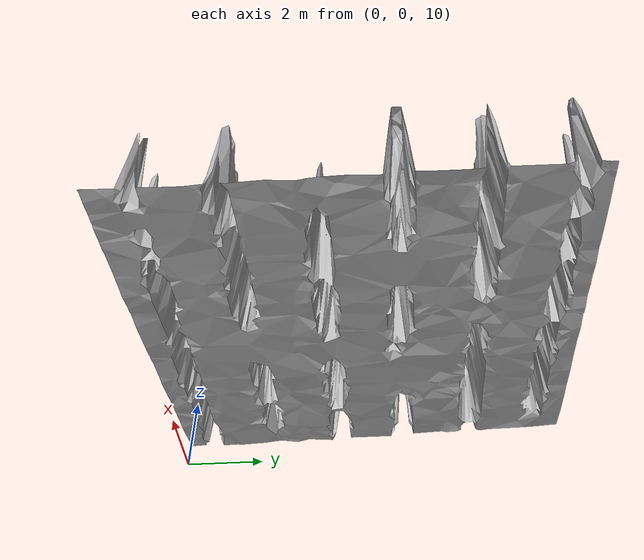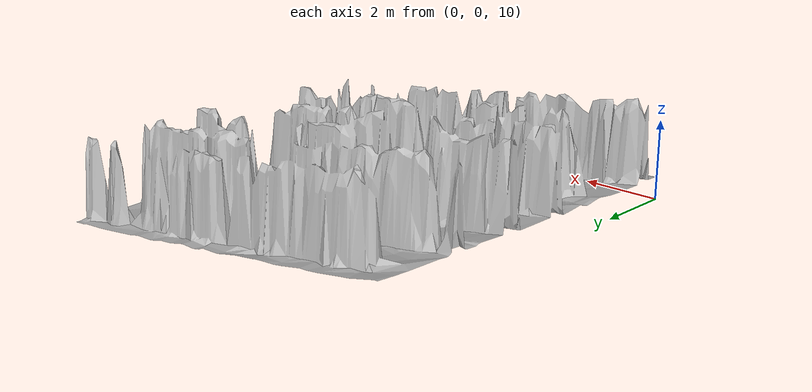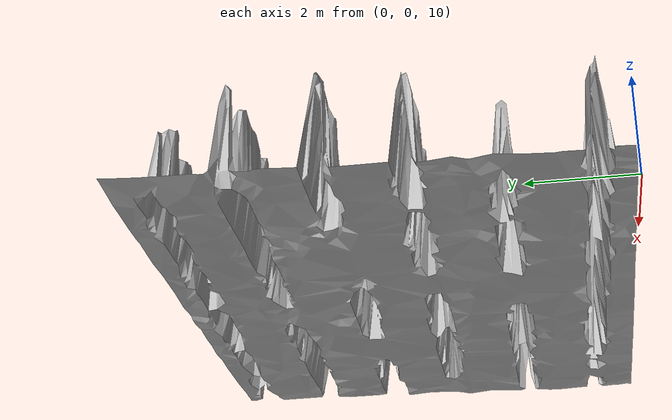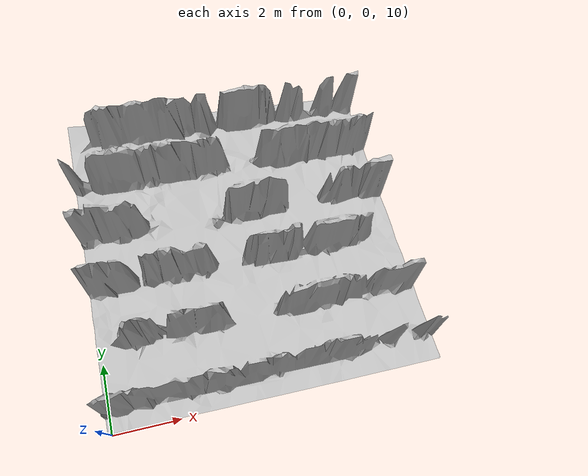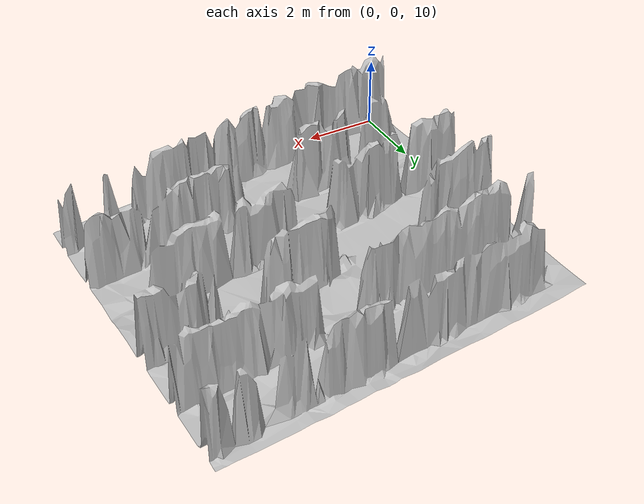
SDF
<?xml version="1.0" ?>
<sdf version="1.10">
    <model name="map_230_60">
        <link name="map_230_60_link">
            <visual name="map_230_60_visual">
                <geometry>
                    <mesh>
                        <uri>meshes/visual/map_230_60.obj</uri>
                    </mesh>
                </geometry>
            </visual>
            <collision name="map_230_60_collision">
                <surface>
                    <friction>
                        <ode>
                            <mu>2.316343837943928</mu>
                            <mu2>2.316343837943928</mu2>
                        </ode>
                        <bullet>
                            <friction>2.316343837943928</friction>
                            <friction2>2.316343837943928</friction2>
                        </bullet>
                    </friction>
                </surface>
                <geometry>
                    <mesh>
                        <uri>meshes/visual/map_230_60.obj</uri>
                    </mesh>
                </geometry>
            </collision>
        </link>
        <static>True</static>
    </model>
</sdf>
